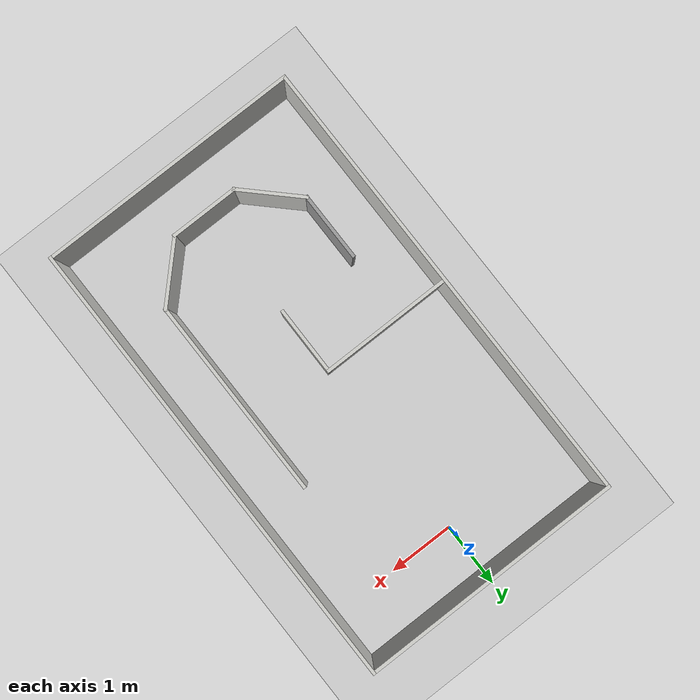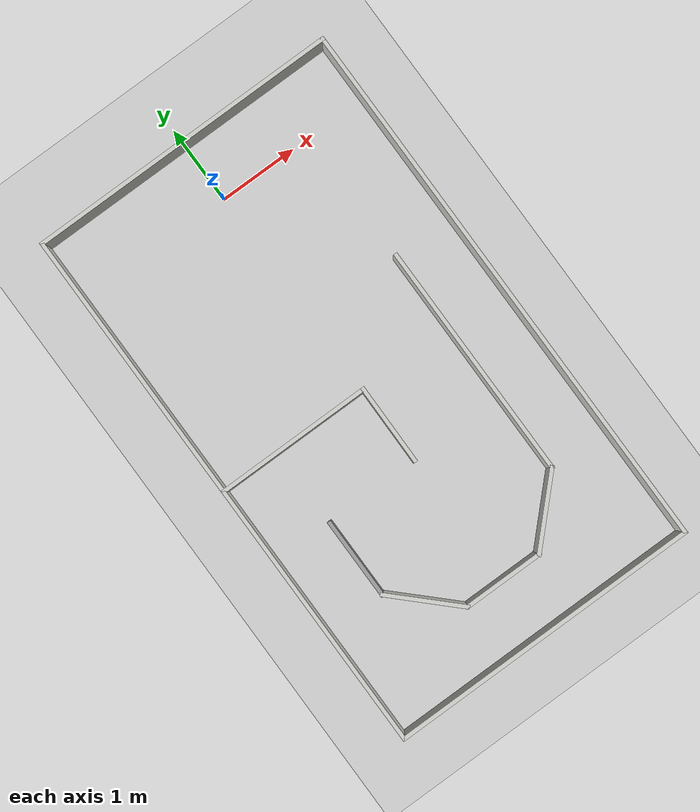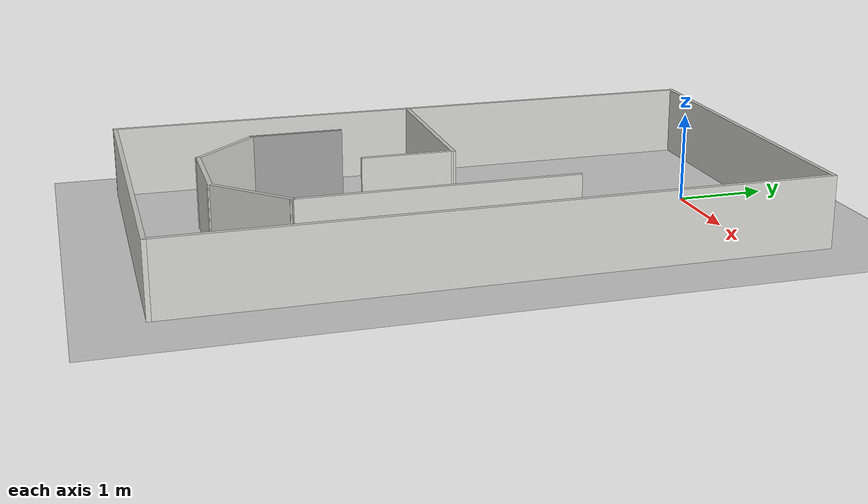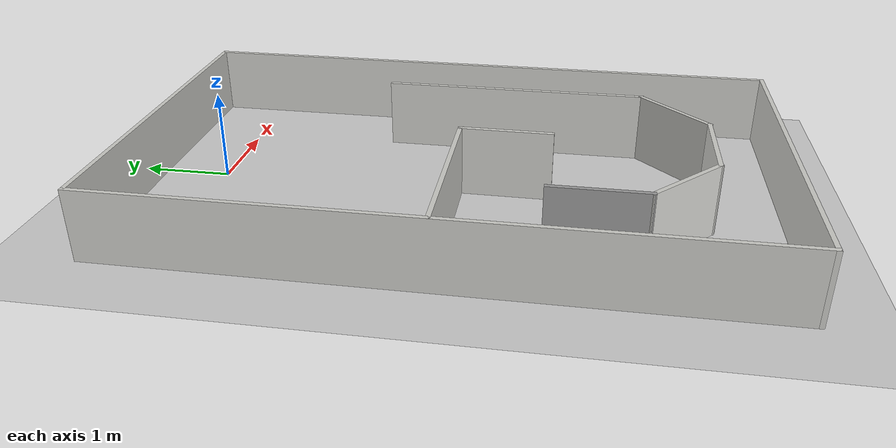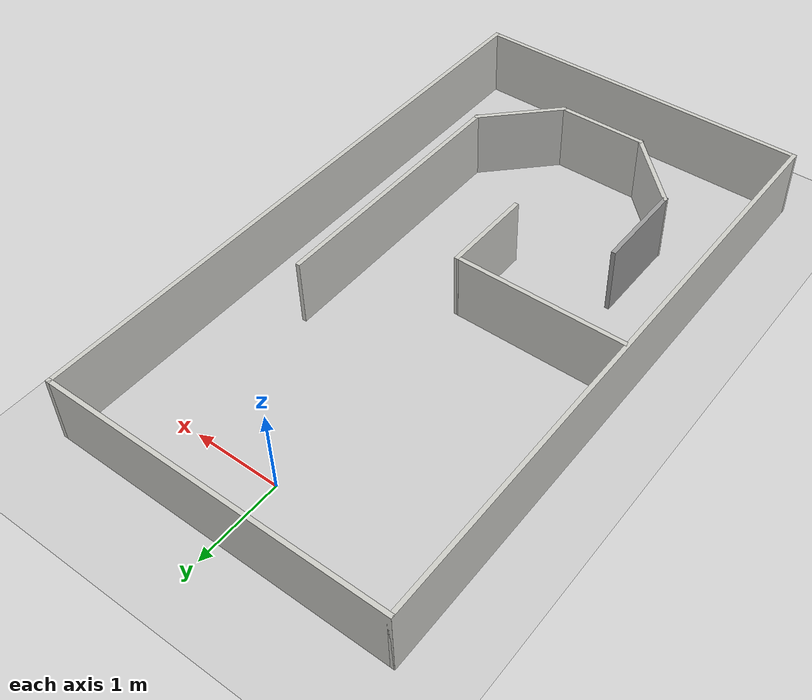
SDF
<sdf version="1.6">
 <world name="default">
  <light name="sun" type="directional">
   <pose>0 0 10 0 -0 0</pose>
   <diffuse>0.8 0.8 0.8 1</diffuse>
   <specular>0.2 0.2 0.2 1</specular>
   <attenuation>
    <range>1000</range>
    <constant>0.9</constant>
    <linear>0.01</linear>
    <quadratic>0.001</quadratic>
   </attenuation>
   <direction>-0.5 0.1 -0.9</direction>
  </light>
  <model name="ground_plane">
   <static>1</static>
   <link name="link">
    <collision name="collision">
     <geometry><plane><normal>0 0 1</normal><size>100 100</size></plane></geometry>
     <surface>
      <contact><collide_bitmask>65535</collide_bitmask></contact>
      <friction><ode><mu>100</mu><mu2>50</mu2></ode></friction>
     </surface>
    </collision>
    <visual name="visual">
     <cast_shadows>0</cast_shadows>
     <geometry><plane><normal>0 0 1</normal><size>100 100</size></plane></geometry>
     <material>
      <script><uri>file://media/materials/scripts/gazebo.material</uri><name>Gazebo/Grey</name></script>
     </material>
    </visual>
   </link>
  </model>
  <gravity>0 0 -9.8</gravity>
  <magnetic_field>6e-06 2.3e-05 -4.2e-05</magnetic_field>
  <atmosphere type="adiabatic"/>
  <physics name="default_physics" default="0" type="ode">
   <max_step_size>0.001</max_step_size>
   <real_time_factor>1</real_time_factor>
   <real_time_update_rate>1000</real_time_update_rate>
  </physics>
  <scene><ambient>0.4 0.4 0.4 1</ambient><background>0.7 0.7 0.7 1</background><shadows>1</shadows></scene>
  <spherical_coordinates>
   <surface_model>EARTH_WGS84</surface_model>
   <latitude_deg>0</latitude_deg>
   <longitude_deg>0</longitude_deg>
   <elevation>0</elevation>
   <heading_deg>0</heading_deg>
  </spherical_coordinates>
  <model name="ground">
   <pose>0 -2.75 0 0 0 -3.14159</pose>
   <link name="Wall_11">
    <collision name="Wall_11_Collision">
     <geometry><box><size>7.05 0.05 0.8</size></box></geometry>
     <pose>0 0 0.4 0 -0 0</pose>
    </collision>
    <visual name="Wall_11_Visual">
     <pose>0 0 0.4 0 -0 0</pose>
     <geometry><box><size>7.05 0.05 0.8</size></box></geometry>
     <material>
      <script><uri>file://media/materials/scripts/gazebo.material</uri><name>Gazebo/CeilingTiled</name></script>
      <ambient>1 1 1 1</ambient>
     </material>
     <meta><layer>0</layer></meta>
    </visual>
    <pose>-1.9875 0 0 0 0 -1.5708</pose>
   </link>
   <link name="Wall_13">
    <collision name="Wall_13_Collision">
     <geometry><box><size>3.05542 0.05 0.8</size></box></geometry>
     <pose>0 0 0.4 0 -0 0</pose>
    </collision>
    <visual name="Wall_13_Visual">
     <pose>0 0 0.4 0 -0 0</pose>
     <geometry><box><size>3.05542 0.05 0.8</size></box></geometry>
     <material>
      <script><uri>file://media/materials/scripts/gazebo.material</uri><name>Gazebo/CeilingTiled</name></script>
      <ambient>1 1 1 1</ambient>
     </material>
     <meta><layer>0</layer></meta>
    </visual>
    <pose>-1.2005 0.5035 0 0 -0 1.5708</pose>
   </link>
   <link name="Wall_15">
    <collision name="Wall_15_Collision">
     <geometry><box><size>1.05361 0.05 0.8</size></box></geometry>
     <pose>0 0 0.4 0 -0 0</pose>
    </collision>
    <visual name="Wall_15_Visual">
     <pose>0 0 0.4 0 -0 0</pose>
     <geometry><box><size>1.05361 0.05 0.8</size></box></geometry>
     <material>
      <script><uri>file://media/materials/scripts/gazebo.material</uri><name>Gazebo/CeilingTiled</name></script>
      <ambient>1 1 1 1</ambient>
     </material>
     <meta><layer>0</layer></meta>
    </visual>
    <pose>-0.8465 2.362 0 0 -0 0.788215</pose>
   </link>
   <link name="Wall_17">
    <collision name="Wall_17_Collision">
     <geometry><box><size>1.05915 0.05 0.8</size></box></geometry>
     <pose>0 0 0.4 0 -0 0</pose>
    </collision>
    <visual name="Wall_17_Visual">
     <pose>0 0 0.4 0 -0 0</pose>
     <geometry><box><size>1.05915 0.05 0.8</size></box></geometry>
     <material>
      <script><uri>file://media/materials/scripts/gazebo.material</uri><name>Gazebo/CeilingTiled</name></script>
      <ambient>1 1 1 1</ambient>
     </material>
     <meta><layer>0</layer></meta>
    </visual>
    <pose>0.012 2.718 0 0 -0 0</pose>
   </link>
   <link name="Wall_19">
    <collision name="Wall_19_Collision">
     <geometry><box><size>1.03436 0.05 0.8</size></box></geometry>
     <pose>0 0 0.4 0 -0 0</pose>
    </collision>
    <visual name="Wall_19_Visual">
     <pose>0 0 0.4 0 -0 0</pose>
     <geometry><box><size>1.03436 0.05 0.8</size></box></geometry>
     <material>
      <script><uri>file://media/materials/scripts/gazebo.material</uri><name>Gazebo/CeilingTiled</name></script>
      <ambient>1 1 1 1</ambient>
     </material>
     <meta><layer>0</layer></meta>
    </visual>
    <pose>0.8685 2.374 0 0 0 -0.773904</pose>
   </link>
   <link name="Wall_21">
    <collision name="Wall_21_Collision">
     <geometry><box><size>1.05629 0.05 0.8</size></box></geometry>
     <pose>0 0 0.4 0 -0 0</pose>
    </collision>
    <visual name="Wall_21_Visual">
     <pose>0 0 0.4 0 -0 0</pose>
     <geometry><box><size>1.05629 0.05 0.8</size></box></geometry>
     <material>
      <script><uri>file://media/materials/scripts/gazebo.material</uri><name>Gazebo/Grey</name></script>
      <ambient>1 1 1 1</ambient>
     </material>
     <meta><layer>0</layer></meta>
    </visual>
    <pose>1.2205 1.527 0 0 0 -1.5708</pose>
   </link>
   <link name="Wall_23">
    <collision name="Wall_23_Collision">
     <geometry><box><size>1.05 0.05 0.8</size></box></geometry>
     <pose>0 0 0.4 0 -0 0</pose>
    </collision>
    <visual name="Wall_23_Visual">
     <pose>0 0 0.4 0 -0 0</pose>
     <geometry><box><size>1.05 0.05 0.8</size></box></geometry>
     <material>
      <script><uri>file://media/materials/scripts/gazebo.material</uri><name>Gazebo/CeilingTiled</name></script>
      <ambient>1 1 1 1</ambient>
     </material>
     <meta><layer>0</layer></meta>
    </visual>
    <pose>0.0125 0.513 0 0 0 -1.5768</pose>
   </link>
   <link name="Wall_24">
    <collision name="Wall_24_Collision">
     <geometry><box><size>2.021 0.05 0.8</size></box></geometry>
     <pose>0 0 0.4 0 -0 0</pose>
    </collision>
    <visual name="Wall_24_Visual">
     <pose>0 0 0.4 0 -0 0</pose>
     <geometry><box><size>2.021 0.05 0.8</size></box></geometry>
     <material>
      <script><uri>file://media/materials/scripts/gazebo.material</uri><name>Gazebo/CeilingTiled</name></script>
      <ambient>1 1 1 1</ambient>
     </material>
     <meta><layer>0</layer></meta>
    </visual>
    <pose>0.995 0.013 0 0 -0 0</pose>
   </link>
   <link name="Wall_5">
    <collision name="Wall_5_Collision">
     <geometry><box><size>4.02425 0.05 0.8</size></box></geometry>
     <pose>0 0 0.4 0 -0 0</pose>
    </collision>
    <visual name="Wall_5_Visual">
     <pose>0 0 0.4 0 -0 0</pose>
     <geometry><box><size>4.02425 0.05 0.8</size></box></geometry>
     <material>
      <script><uri>file://media/materials/scripts/gazebo.material</uri><name>Gazebo/CeilingTiled</name></script>
      <ambient>1 1 1 1</ambient>
     </material>
     <meta><layer>0</layer></meta>
    </visual>
    <pose>0 -3.5 0 0 -0 0</pose>
   </link>
   <link name="Wall_7">
    <collision name="Wall_7_Collision">
     <geometry><box><size>7.05 0.05 0.8</size></box></geometry>
     <pose>0 0 0.4 0 -0 0</pose>
    </collision>
    <visual name="Wall_7_Visual">
     <pose>0 0 0.4 0 -0 0</pose>
     <geometry><box><size>7.05 0.05 0.8</size></box></geometry>
     <material>
      <script><uri>file://media/materials/scripts/gazebo.material</uri><name>Gazebo/CeilingTiled</name></script>
      <ambient>1 1 1 1</ambient>
     </material>
     <meta><layer>0</layer></meta>
    </visual>
    <pose>1.9875 0 0 0 -0 1.5708</pose>
   </link>
   <link name="Wall_9">
    <collision name="Wall_9_Collision">
     <geometry><box><size>4.025 0.05 0.8</size></box></geometry>
     <pose>0 0 0.4 0 -0 0</pose>
    </collision>
    <visual name="Wall_9_Visual">
     <pose>0 0 0.4 0 -0 0</pose>
     <geometry><box><size>4.025 0.05 0.8</size></box></geometry>
     <material>
      <script><uri>file://media/materials/scripts/gazebo.material</uri><name>Gazebo/CeilingTiled</name></script>
      <ambient>1 1 1 1</ambient>
     </material>
     <meta><layer>0</layer></meta>
    </visual>
    <pose>0 3.5 0 0 -0 3.14159</pose>
   </link>
   <static>1</static>
  </model>
 </world>
</sdf>
